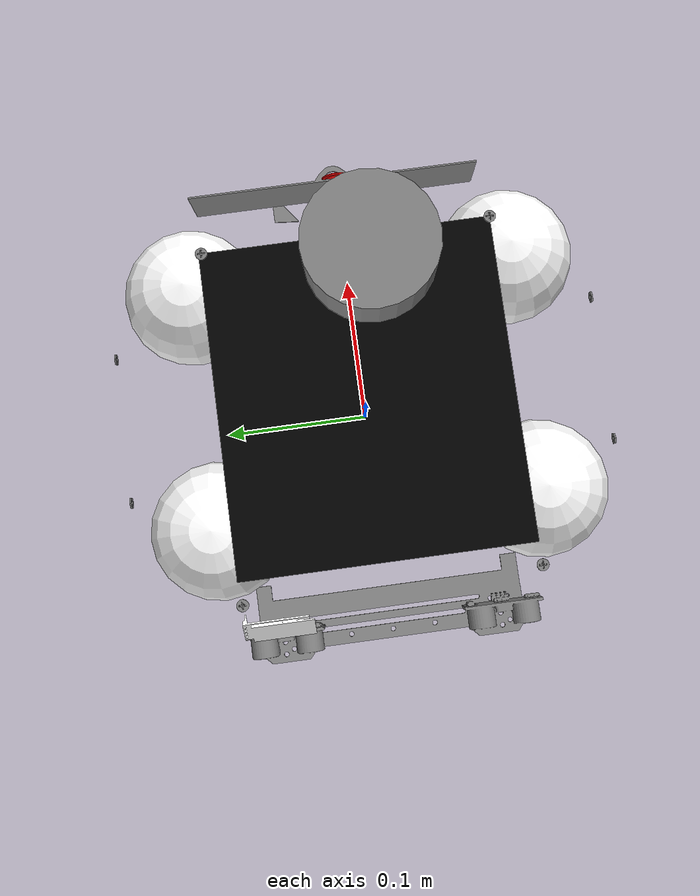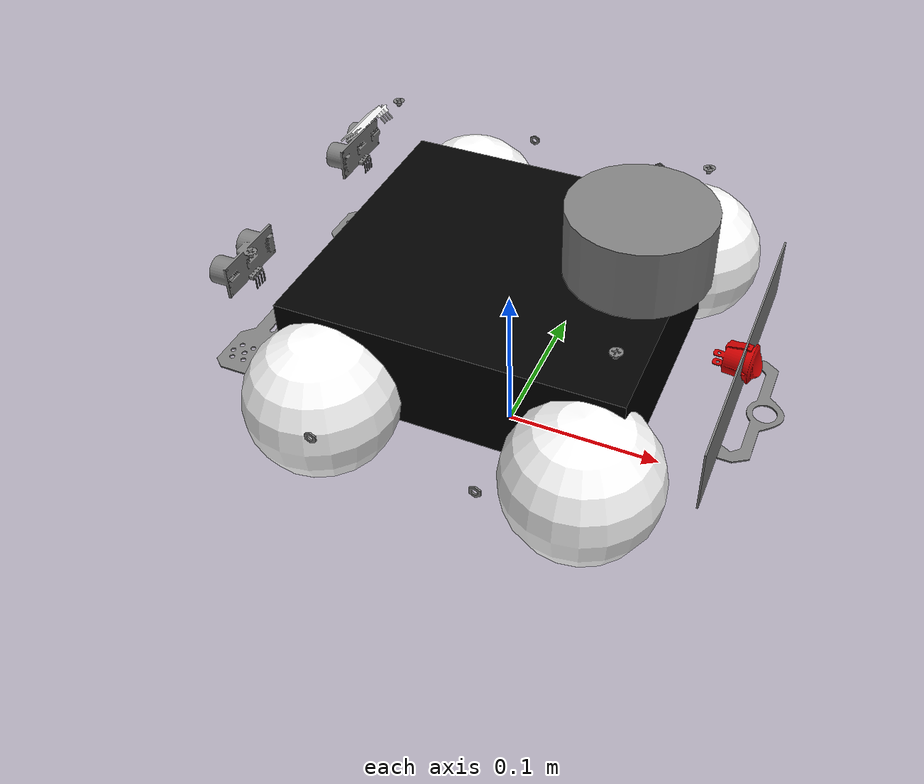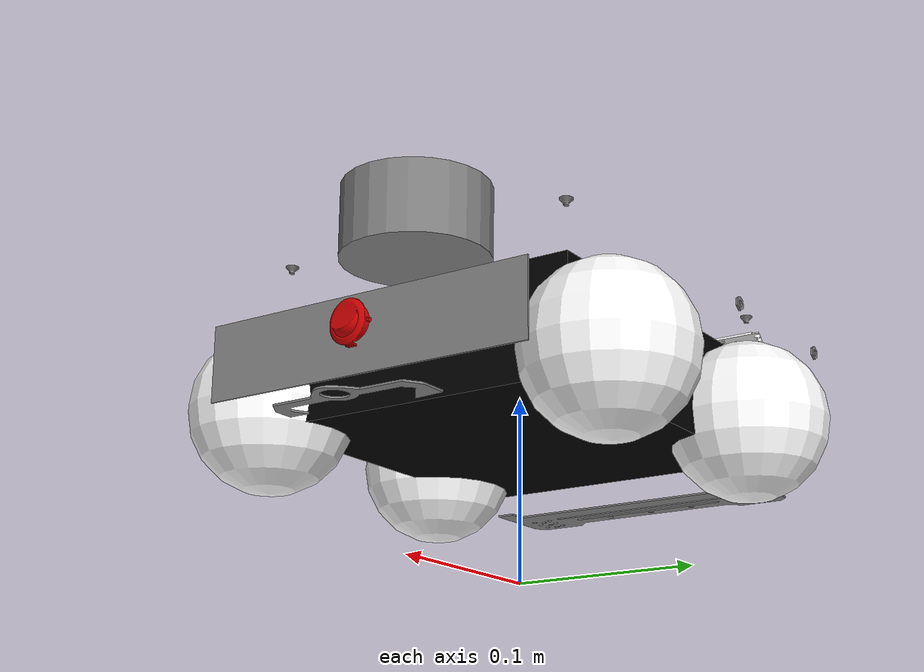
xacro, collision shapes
<?xml version="1.0"?>
<robot name="robo" xmlns:xacro="http://www.ros.org/wiki/xacro"
                   xmlns:gz="http://gazebosim.org/schema">

  <!-- ═══════════════ PROPERTIES ═══════════════ -->
  <xacro:property name="wheel_radius"     value="0.0439222"/>
  <xacro:property name="wheel_width"      value="0.03"/>
  <xacro:property name="wheel_separation" value="0.204108"/>
  <xacro:property name="wheelbase"        value="0.151410"/>

  <!-- ═══════════════ MATERIALS ═══════════════ -->
  <material name="black"> <color rgba="0.0 0.0 0.0 1.0"/> </material>
  <material name="white"> <color rgba="1.0 1.0 1.0 1.0"/> </material>
  <material name="grey">  <color rgba="0.5 0.5 0.5 1.0"/> </material>
  <material name="red">   <color rgba="0.8 0.0 0.0 1.0"/> </material>

  <!-- ═══════════════ BASE FOOTPRINT ═══════════════ -->
  <link name="base_footprint"/>

  <joint name="base_footprint_joint" type="fixed">
    <origin xyz="0 0 ${wheel_radius}" rpy="0 0 0"/>
    <parent link="base_footprint"/>
    <child  link="base_link"/>
  </joint>

  <!-- ═══════════════ BASE LINK ═══════════════ -->
  <link name="base_link">
    <inertial>
      <origin xyz="0 0 0" rpy="0 0 0"/>
      <mass value="2.5"/>
      <inertia ixx="0.03311" iyy="0.019021" izz="0.0495"
               ixy="0" iyz="0" ixz="0"/>
    </inertial>

    <!-- VISUAL: mesh from your original, rpy="0 0 3.14159" for Fusion flip -->
    <visual>
      <origin xyz="0 0 0" rpy="0 0 3.14159"/>
      <geometry>
        <mesh filename="file://$(find robo_desc)/meshes/base_link2.stl"
              scale="0.001 0.00089 0.001"/>
      </geometry>
      <material name="black"/>
    </visual>

    <!-- COLLISION: box only, unchanged from working version -->
    <collision>
      <origin xyz="0 0 0.06" rpy="0 0 0"/>
      <geometry><box size="0.20 0.18 0.06"/></geometry>
    </collision>
  </link>

  <xacro:macro name="wheel" params="name mesh vis_x vis_y vis_z
                                     joint_name jx jy jz
                                     fdir1_x fdir1_y">
    <link name="${name}">
      <inertial>
        <origin xyz="0 0 0" rpy="0 0 0"/>
        <mass value="0.789"/>
        <inertia ixx="0.000422" iyy="0.000761" izz="0.000422"
                 ixy="0" iyz="0" ixz="0"/>
      </inertial>

      <!-- VISUAL: mesh with original offsets -->
      <visual>
        <origin xyz="${vis_x} ${vis_y} ${vis_z}" rpy="0 0 0"/>
        <geometry>
          <mesh filename="file://$(find robo_desc)/meshes/${mesh}"
                scale="0.0009 0.0008 0.0009"/>
        </geometry>
        <material name="white"/>
      </visual>

      <!-- COLLISION: sphere — working mecanum pattern, not changed -->
      <collision>
        <origin xyz="0 0 0" rpy="0 0 0"/>
        <geometry><sphere radius="${wheel_radius}"/></geometry>
      </collision>
    </link>

    <joint name="${joint_name}" type="continuous">
      <origin xyz="${jx} ${jy} ${jz}" rpy="0 0 0"/>
      <parent link="base_link"/>
      <child  link="${name}"/>
      <axis xyz="0 1 0"/>
      <dynamics damping="0.01" friction="0.0"/>
    </joint>

    <!-- FRICTION: gz:expressed_in pattern from working reference -->
    <gazebo reference="${name}">
      <material>Gazebo/White</material>
      <collision>
        <surface>
          <friction>
            <ode>
              <mu>1.5</mu>
              <mu2>.50</mu2>
              <fdir1 gz:expressed_in="base_footprint">${fdir1_x} ${fdir1_y} 0</fdir1>
            </ode>
          </friction>
        </surface>
      </collision>
    </gazebo>
  </xacro:macro>

  <xacro:wheel
    name="right_front"  mesh="right_front.stl"
    vis_x=" 0.083355"   vis_y="-0.102054"  vis_z="-0.0439222"
    joint_name="right_f"
    jx=" 0.083355"      jy="-0.102054"     jz="0.0439222"
    fdir1_x="1"  fdir1_y="1"/>

  <xacro:wheel
    name="right_back"   mesh="rigth_back.stl"
    vis_x="-0.068055"   vis_y="-0.102054"  vis_z="-0.0439222"
    joint_name="right_b"
    jx="-0.068055"      jy="-0.102054"     jz="0.0439222"
    fdir1_x="1"  fdir1_y="-1"/>

  <xacro:wheel
    name="left_front"   mesh="left_front.stl"
    vis_x=" 0.083355"   vis_y=" 0.102054"  vis_z="-0.0439222"
    joint_name="left_f"
    jx=" 0.083355"      jy=" 0.102054"     jz="0.0439222"
    fdir1_x="1"  fdir1_y="-1"/>

  <xacro:wheel
    name="left_back"    mesh="left_back.stl"
    vis_x="-0.068055"   vis_y=" 0.102054"  vis_z="-0.0439222"
    joint_name="left_b"
    jx="-0.068055"      jy=" 0.102054"     jz="0.0439222"
    fdir1_x="1"  fdir1_y="1"/>

  <!-- ═══════════════ PART2 (sensors board) ═══════════════ -->
  <link name="part2">
    <inertial>
      <origin xyz="0 0 0.015" rpy="0 0 0"/>
      <mass value="0.296"/>
      <inertia ixx="5.2e-05" iyy="5.2e-05" izz="5.9e-05"
               ixy="0" iyz="0" ixz="0"/>
    </inertial>
    <visual>
      <origin xyz="0 0 0" rpy="0 0 3.14159"/>
      <geometry>
        <mesh filename="file://$(find robo_desc)/meshes/extra.stl"
              scale="0.001 0.0009 0.001"/>
      </geometry>
      <material name="grey"/>
    </visual>
    <collision>
      <origin xyz="0 0 0" rpy="0 0 0"/>
      <geometry>
        <mesh filename="file://$(find robo_desc)/meshes/extra.stl"
              scale="0.001 0.001 0.001"/>
      </geometry>
    </collision>
  </link>
  <joint name="sensors_joint" type="fixed">
    <origin xyz="0 0 0" rpy="0 0 0"/>
    <parent link="base_link"/>
    <child  link="part2"/>
  </joint>

  <!-- ═══════════════ LCD ═══════════════ -->
  <link name="lcd">
    <inertial>
      <origin xyz="0 0 0.015" rpy="0 0 0"/>
      <mass value="0.050"/>
      <inertia ixx="1e-05" iyy="1e-05" izz="1e-05"
               ixy="0" iyz="0" ixz="0"/>
    </inertial>
    <visual>
      <origin xyz="0 0 0" rpy="0 0 3.14159"/>
      <geometry>
        <mesh filename="file://$(find robo_desc)/meshes/led.stl"
              scale="0.001 0.001 0.001"/>
      </geometry>
      <material name="white"/>
    </visual>
    <collision>
      <origin xyz="0 0 0" rpy="0 0 0"/>
      <geometry>
        <mesh filename="file://$(find robo_desc)/meshes/led.stl"
              scale="0.001 0.001 0.001"/>
      </geometry>
    </collision>
  </link>
  <joint name="display_joint" type="fixed">
    <origin xyz="0 0 0" rpy="0 0 0"/>
    <parent link="base_link"/>
    <child  link="lcd"/>
  </joint>

  <!-- ═══════════════ PUSH BUTTON ═══════════════ -->
  <link name="push_button">
    <inertial>
      <origin xyz="0 0 0" rpy="0 0 0"/>
      <mass value="0.050"/>
      <inertia ixx="1e-05" iyy="1e-05" izz="1e-05"
               ixy="0" iyz="0" ixz="0"/>
    </inertial>
    <visual>
      <origin xyz="0 0 0" rpy="0 0 3.14159"/>
      <geometry>
        <mesh filename="file://$(find robo_desc)/meshes/switch.stl"
              scale="0.001 0.001 0.001"/>
      </geometry>
      <material name="red"/>
    </visual>
    <collision>
      <origin xyz="0 0 0" rpy="0 0 0"/>
      <geometry>
        <mesh filename="file://$(find robo_desc)/meshes/switch.stl"
              scale="0.001 0.001 0.001"/>
      </geometry>
    </collision>
  </link>
  <joint name="button_joint" type="fixed">
    <origin xyz="0 0 0" rpy="0 0 0"/>
    <parent link="base_link"/>
    <child  link="push_button"/>
  </joint>

  <!-- ═══════════════ LIDAR ═══════════════ -->
  <link name="lidar">
    <inertial>
      <origin xyz="0 0 0" rpy="0 0 0"/>
      <mass value="0.200"/>
      <inertia ixx="5.2e-05" iyy="5.2e-05" izz="5.9e-05"
               ixy="0" iyz="0" ixz="0"/>
    </inertial>
    <!-- VISUAL: original mesh offset + rpy flip -->
    <visual>
      <origin xyz="-0.079 0 -0.133" rpy="0 0 3.14159"/>
      <geometry>
        <mesh filename="file://$(find robo_desc)/meshes/lidar.stl"
              scale="0.001 0.001 0.001"/>
      </geometry>
      <material name="grey"/>
    </visual>
    <!-- COLLISION: simple cylinder, no mesh -->
    <collision>
      <origin xyz="0 0 0" rpy="0 0 0"/>
      <geometry><cylinder radius="0.04" length="0.04"/></geometry>
    </collision>
  </link>
  <joint name="lidar_joint" type="fixed">
    <!-- joint origin from your original -->
    <origin xyz="0.079 -0.013 0.133" rpy="0 0 0"/>
    <parent link="base_link"/>
    <child  link="lidar"/>
  </joint>

  <!-- ═══════════════ IMU ═══════════════ -->
  <link name="imu_link">
    <inertial>
      <origin xyz="0 0 0" rpy="0 0 0"/>
      <mass value="0.010"/>
      <inertia ixx="1e-6" iyy="1e-6" izz="1e-6"
               ixy="0" iyz="0" ixz="0"/>
    </inertial>
    <visual>
      <origin xyz="0 0 0" rpy="0 0 0"/>
      <geometry><box size="0.02 0.02 0.01"/></geometry>
      <material name="red"/>
    </visual>
    <collision>
      <origin xyz="0 0 0" rpy="0 0 0"/>
      <geometry><box size="0.02 0.02 0.01"/></geometry>
    </collision>
  </link>
  <joint name="imu_joint" type="fixed">
    <origin xyz="0 0 0.05" rpy="0 0 0"/>
    <parent link="base_link"/>
    <child  link="imu_link"/>
  </joint>

  <!-- ═══════════════ GAZEBO PLUGINS ═══════════════ -->
  <gazebo>
    <plugin
      filename="gz-sim-sensors-system"
      name="gz::sim::systems::Sensors">
      <render_engine>ogre2</render_engine>
    </plugin>
  </gazebo>

  <gazebo>
    <plugin filename="gz-sim-mecanum-drive-system"
            name="gz::sim::systems::MecanumDrive">
      <!-- Joint mapping from your working version -->
      <front_left_joint>left_f</front_left_joint>
      <front_right_joint>right_f</front_right_joint>
      <back_left_joint>left_b</back_left_joint>
      <back_right_joint>right_b</back_right_joint>
      <wheel_separation>${wheel_separation}</wheel_separation>
      <wheelbase>${wheelbase}</wheelbase>
      <wheel_radius>${wheel_radius}</wheel_radius>
      <topic>cmd_vel</topic>
      <odom_topic>odom</odom_topic>
      <tf_topic>tf</tf_topic>
      <frame_id>odom</frame_id>
      <child_frame_id>base_footprint</child_frame_id>
      <odom_publish_frequency>50</odom_publish_frequency>
      <publish_odom>false</publish_odom>
      <publish_odom_tf>false</publish_odom_tf>
      <publish_wheel_tf>false</publish_wheel_tf>
      <min_velocity>-2.0</min_velocity>
      <max_velocity>2.0</max_velocity>
      <min_acceleration>-5.0</min_acceleration>
      <max_acceleration>5.0</max_acceleration>
    </plugin>
  </gazebo>

  <gazebo>
    <plugin filename="gz-sim-joint-state-publisher-system"
            name="gz::sim::systems::JointStatePublisher">
      <joint_name>right_f</joint_name>
      <joint_name>right_b</joint_name>
      <joint_name>left_f</joint_name>
      <joint_name>left_b</joint_name>
      <topic>joint_states</topic>
      <update_rate>50</update_rate>
    </plugin>
  </gazebo>

  <!-- 2-D LiDAR sensor -->
  <gazebo reference="lidar">
    <material>Gazebo/Grey</material>
    <sensor name="gpu_lidar" type="gpu_lidar">
      <pose>0 0 0 0 0 0</pose>
      <topic>scan</topic>
      <update_rate>10</update_rate>
      <ray>
        <scan>
          <horizontal>
            <samples>360</samples>
            <resolution>1</resolution>
            <min_angle>-3.14159265</min_angle>
            <max_angle> 3.14159265</max_angle>
          </horizontal>
        </scan>
        <range>
          <min>0.15</min>
          <max>12.0</max>
          <resolution>0.01</resolution>
        </range>
        <noise>
          <type>gaussian</type>
          <mean>0.0</mean>
          <stddev>0.01</stddev>
        </noise>
      </ray>
      <always_on>true</always_on>
      <visualize>true</visualize>
      <gz_frame_id>lidar</gz_frame_id>
    </sensor>
  </gazebo>

  <!-- IMU sensor -->
  <gazebo reference="imu_link">
    <material>Gazebo/Red</material>
    <sensor name="imu_sensor" type="imu">
      <pose>0 0 0 0 0 0</pose>
      <topic>imu</topic>
      <update_rate>100</update_rate>
      <imu>
        <angular_velocity>
          <x><noise type="gaussian"><mean>0.0</mean><stddev>2e-4</stddev>
            <bias_mean>0.0000075</bias_mean><bias_stddev>0.0000008</bias_stddev></noise></x>
          <y><noise type="gaussian"><mean>0.0</mean><stddev>2e-4</stddev>
            <bias_mean>0.0000075</bias_mean><bias_stddev>0.0000008</bias_stddev></noise></y>
          <z><noise type="gaussian"><mean>0.0</mean><stddev>2e-4</stddev>
            <bias_mean>0.0000075</bias_mean><bias_stddev>0.0000008</bias_stddev></noise></z>
        </angular_velocity>
        <linear_acceleration>
          <x><noise type="gaussian"><mean>0.0</mean><stddev>1.7e-2</stddev>
            <bias_mean>0.1</bias_mean><bias_stddev>0.001</bias_stddev></noise></x>
          <y><noise type="gaussian"><mean>0.0</mean><stddev>1.7e-2</stddev>
            <bias_mean>0.1</bias_mean><bias_stddev>0.001</bias_stddev></noise></y>
          <z><noise type="gaussian"><mean>0.0</mean><stddev>1.7e-2</stddev>
            <bias_mean>0.1</bias_mean><bias_stddev>0.001</bias_stddev></noise></z>
        </linear_acceleration>
      </imu>
      <always_on>true</always_on>
      <gz_frame_id>imu_link</gz_frame_id>
    </sensor>
  </gazebo>

  <!-- Material tags -->
  <gazebo reference="base_link">   <material>Gazebo/DarkGrey</material> </gazebo>
  <gazebo reference="part2">       <material>Gazebo/Grey</material>     </gazebo>
  <gazebo reference="lcd">         <material>Gazebo/White</material>    </gazebo>
  <gazebo reference="push_button"> <material>Gazebo/Red</material>      </gazebo>
  <gazebo reference="imu_link">    <material>Gazebo/Red</material>      </gazebo>

</robot>
